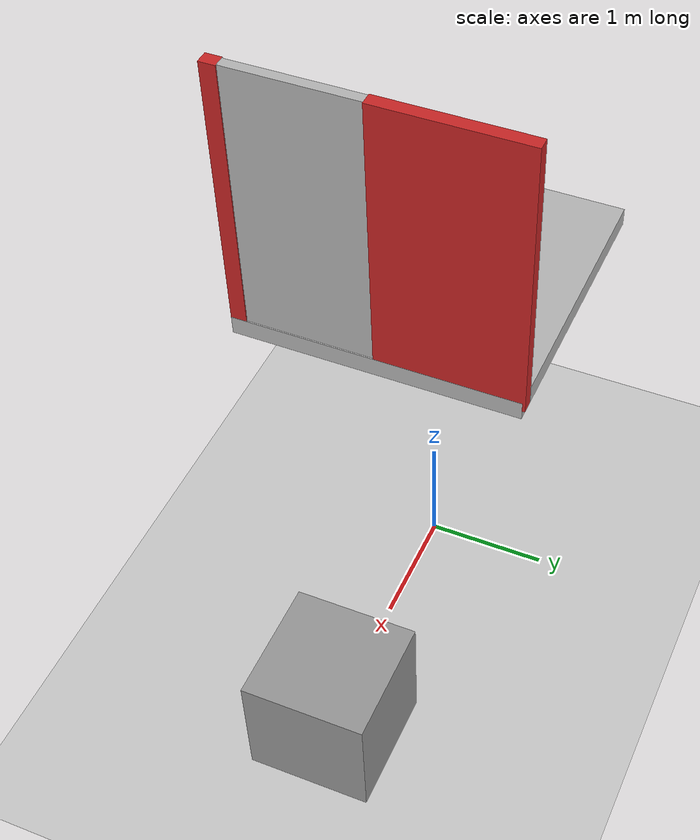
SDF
<sdf version="1.6">
 <world name="default">
  <light name="sun" type="directional">
   <pose>0 0 10 0 -0 0</pose>
   <diffuse>0.8 0.8 0.8 1</diffuse>
   <specular>0.1 0.1 0.1 1</specular>
   <attenuation>
    <range>1000</range>
    <constant>0.9</constant>
    <linear>0.01</linear>
    <quadratic>0.001</quadratic>
   </attenuation>
   <direction>-0.5 0.5 -1</direction>
  </light>
  <model name="ground_plane">
   <static>1</static>
   <link name="link">
    <collision name="collision">
     <geometry><plane><normal>0 0 1</normal><size>100 100</size></plane></geometry>
     <surface><friction><ode><mu>100</mu><mu2>50</mu2></ode></friction></surface>
    </collision>
    <visual name="visual">
     <cast_shadows>0</cast_shadows>
     <geometry><plane><normal>0 0 1</normal><size>100 100</size></plane></geometry>
     <material>
      <script><uri>file://media/materials/scripts/gazebo.material</uri><name>Gazebo/Grey</name></script>
     </material>
    </visual>
   </link>
  </model>
  <plugin name="elevator_event_plugin" filename="libSimEventsPlugin.so">
   <region><name>region1</name><volume><min>1.5 -3 0</min><max>2.5 -1 1</max></volume></region>
   <region><name>region2</name><volume><min>1.5 1 0</min><max>2.5 3 1</max></volume></region>
   <event>
    <name>region1_event</name>
    <type>occupied</type>
    <region>region1</region>
    <topic>~/elevator</topic>
    <msg_data>1</msg_data>
   </event>
   <event>
    <name>region2_event</name>
    <type>occupied</type>
    <region>region2</region>
    <topic>~/elevator</topic>
    <msg_data>0</msg_data>
   </event>
  </plugin>
  <model name="elevator">
   <pose>0 0 3.0715 0 -0 0</pose>
   <link name="link">
    <inertial>
     <mass>800</mass>
     <inertia><ixx>1</ixx><ixy>0</ixy><ixz>0</ixz><iyy>1</iyy><iyz>0</iyz><izz>1</izz></inertia>
    </inertial>
    <collision name="floor_collision"><geometry><box><size>2.25 2.25 0.15</size></box></geometry></collision>
    <visual name="floor_visual"><geometry><box><size>2.25 2.25 0.15</size></box></geometry></visual>
    <collision name="wall1_collision">
     <pose>1.0745 0.5725 1.125 0 -0 0</pose>
     <geometry><box><size>0.1 1.15 2.25</size></box></geometry>
    </collision>
    <visual name="wall1_visual">
     <pose>1.0745 0.5725 1.125 0 -0 0</pose>
     <geometry><box><size>0.1 1.15 2.25</size></box></geometry>
     <material><script><name>Gazebo/Red</name><uri>__default__</uri></script></material>
    </visual>
    <collision name="wall2_collision">
     <pose>1.0745 -1.0625 1.125 0 -0 0</pose>
     <geometry><box><size>0.1 0.125 2.25</size></box></geometry>
    </collision>
    <visual name="wall2_visual">
     <pose>1.0745 -1.0625 1.125 0 -0 0</pose>
     <geometry><box><size>0.1 0.125 2.25</size></box></geometry>
     <material><script><name>Gazebo/Red</name><uri>__default__</uri></script></material>
    </visual>
   </link>
   <link name="door">
    <pose>1.0745 -0.5 1.125 0 -0 0</pose>
    <collision name="collision"><geometry><box><size>0.08 1 2.25</size></box></geometry></collision>
    <visual name="visual"><geometry><box><size>0.08 1 2.25</size></box></geometry></visual>
    <inertial>
     <inertia><ixx>1</ixx><ixy>0</ixy><ixz>0</ixz><iyy>1</iyy><iyz>0</iyz><izz>1</izz></inertia>
     <mass>1</mass>
    </inertial>
   </link>
   <joint name="door" type="prismatic">
    <parent>link</parent>
    <child>door</child>
    <axis>
     <xyz>0 1 0</xyz>
     <limit><lower>0</lower><upper>1</upper><effort>10</effort></limit>
     <dynamics>
      <damping>2</damping>
      <spring_reference>0</spring_reference>
      <spring_stiffness>0</spring_stiffness>
     </dynamics>
     <use_parent_model_frame>0</use_parent_model_frame>
    </axis>
   </joint>
   <joint name="lift" type="prismatic">
    <parent>world</parent>
    <child>link</child>
    <axis>
     <xyz>0 0 1</xyz>
     <limit><lower>0</lower><upper>10</upper><effort>100000</effort></limit>
     <dynamics>
      <damping>50</damping>
      <spring_reference>0</spring_reference>
      <spring_stiffness>0</spring_stiffness>
     </dynamics>
     <use_parent_model_frame>0</use_parent_model_frame>
    </axis>
    <physics>
     <ode><implicit_spring_damper>1</implicit_spring_damper><limit><cfm>0</cfm><erp>0.2</erp></limit></ode>
    </physics>
   </joint>
   <plugin name="elevator_plugin" filename="libElevatorPlugin.so">
    <lift_joint>elevator::lift</lift_joint>
    <door_joint>elevator::door</door_joint>
    <floor_height>3.075</floor_height>
    <door_wait_time>10</door_wait_time>
    <topic>~/elevator</topic>
   </plugin>
  </model>
  <gravity>0 0 -9.8</gravity>
  <magnetic_field>6e-06 2.3e-05 -4.2e-05</magnetic_field>
  <atmosphere type="adiabatic"/>
  <physics name="default_physics" default="0" type="ode">
   <max_step_size>0.001</max_step_size>
   <real_time_factor>1</real_time_factor>
   <real_time_update_rate>1000</real_time_update_rate>
  </physics>
  <scene><ambient>0.4 0.4 0.4 1</ambient><background>0.7 0.7 0.7 1</background><shadows>1</shadows></scene>
  <spherical_coordinates>
   <surface_model>EARTH_WGS84</surface_model>
   <latitude_deg>0</latitude_deg>
   <longitude_deg>0</longitude_deg>
   <elevation>0</elevation>
   <heading_deg>0</heading_deg>
  </spherical_coordinates>
  <model name="unit_box_0">
   <pose>2.27524 0.081513 0.5 0 -0 0</pose>
   <link name="link">
    <inertial>
     <mass>1</mass>
     <inertia>
      <ixx>0.166667</ixx>
      <ixy>0</ixy>
      <ixz>0</ixz>
      <iyy>0.166667</iyy>
      <iyz>0</iyz>
      <izz>0.166667</izz>
     </inertia>
    </inertial>
    <collision name="collision"><geometry><box><size>1 1 1</size></box></geometry></collision>
    <visual name="visual">
     <geometry><box><size>1 1 1</size></box></geometry>
     <material>
      <script><name>Gazebo/Grey</name><uri>file://media/materials/scripts/gazebo.material</uri></script>
     </material>
    </visual>
   </link>
  </model>
 </world>
</sdf>
